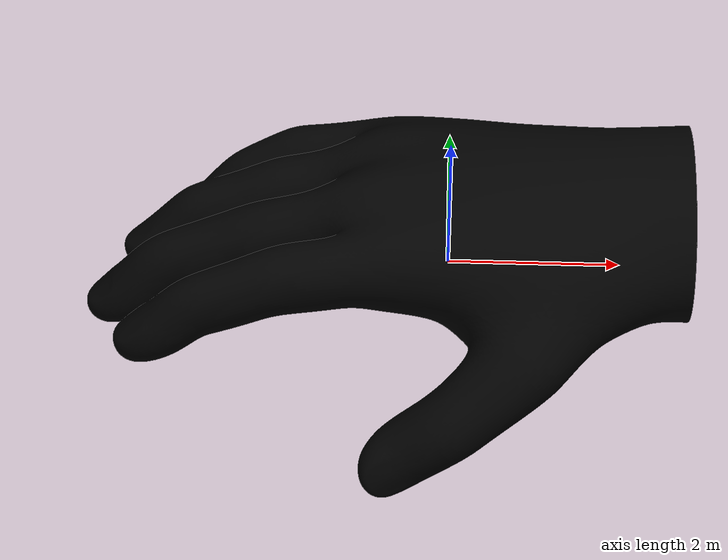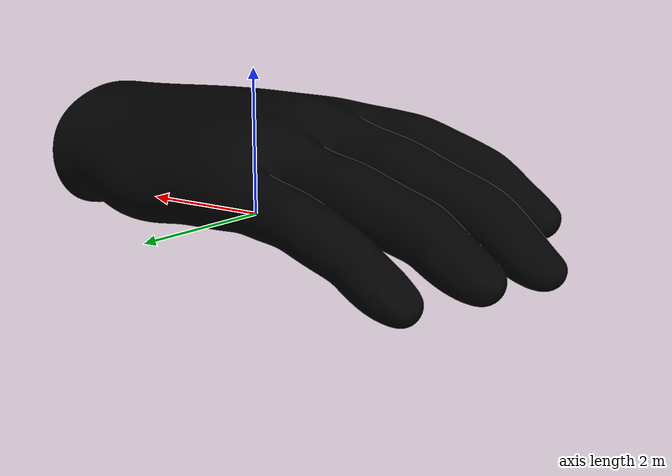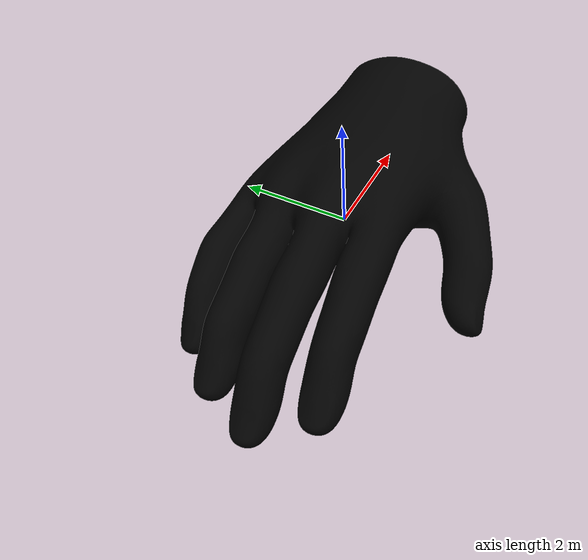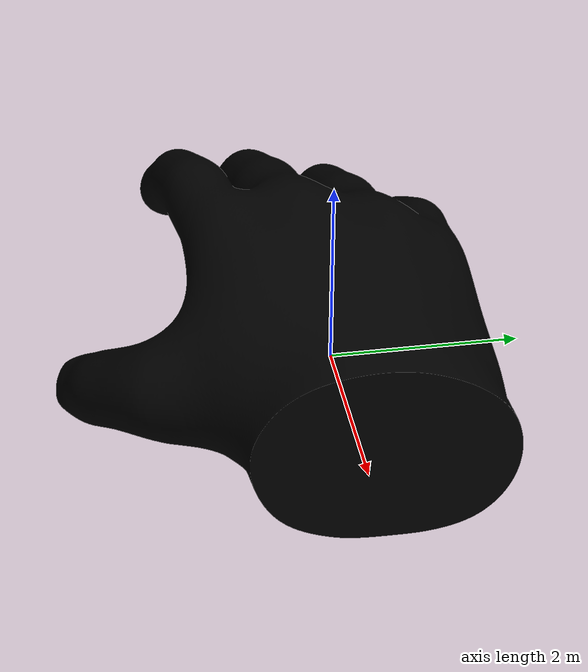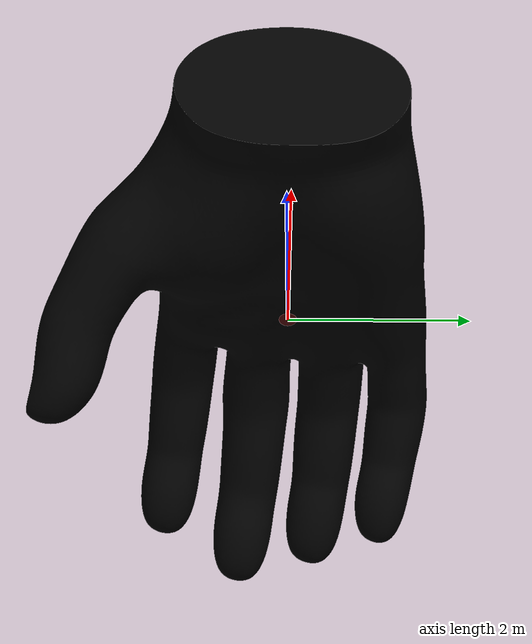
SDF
<sdf version="1.7">
  <model name="hand_2">
    <link name="link">
      <inertial>
        <mass>1</mass>
        <pose>0.4106539958646415 -0.2982243041264396 0.20050890452269782 0.0 -0.0 0.0</pose>
      </inertial>
      <self_collide>0</self_collide>
      <enable_wind>0</enable_wind>
      <kinematic>0</kinematic>
      <pose>0 0 0 0 -0 0</pose>
    </link>
    <link name="hand_2">
      <inertial>
        <pose>0 0 0 0 -0 0</pose>
        <mass>80</mass>
        <inertia>
          <ixx>24.88</ixx>
          <ixy>0</ixy>
          <ixz>0</ixz>
          <iyy>25.73</iyy>
          <iyz>0</iyz>
          <izz>2.48</izz>
        </inertia>
      </inertial>
      <self_collide>0</self_collide>
      <enable_wind>0</enable_wind>
      <kinematic>0</kinematic>
      <pose>0 0 0 0 -0 0</pose>
      <gravity>1</gravity>
      <visual name="visual">
        <pose>0 -0.0 0.02 0 -0 0</pose>
        <geometry>
          <mesh>
            <uri>model://hand_2/meshes/one_hand.dae</uri>
          </mesh>
        </geometry>
        <material>
          <shader type="pixel">
            <normal_map>__default__</normal_map>
          </shader>
          <script>
            <name>ModelPreview_3::hand_2::visual_MATERIAL_</name>
            <uri>__default__</uri>
          </script>
          <ambient>0 0 0 1</ambient>
          <diffuse>0 0 0 1</diffuse>
          <specular>0 0 0 1</specular>
          <emissive>0 0 0 1</emissive>
        </material>
        <transparency>0</transparency>
        <cast_shadows>1</cast_shadows>
      </visual>
      <collision name="collision">
        <laser_retro>0</laser_retro>
        <max_contacts>10</max_contacts>
        <pose>0 -0.0 0.02 0 -0 0</pose>
        <geometry>
          <mesh>
           <uri>model://hand_2/meshes/one_hand.dae</uri>
            <scale>1 1 1</scale>
          </mesh>
        </geometry>
        <surface>
          <friction>
            <ode>
              <mu>1</mu>
              <mu2>1</mu2>
              <fdir1>0 0 0</fdir1>
              <slip1>0</slip1>
              <slip2>0</slip2>
            </ode>
            <torsional>
              <coefficient>1</coefficient>
              <patch_radius>0</patch_radius>
              <surface_radius>0</surface_radius>
              <use_patch_radius>1</use_patch_radius>
              <ode>
                <slip>0</slip>
              </ode>
            </torsional>
          </friction>
          <bounce>
            <restitution_coefficient>0</restitution_coefficient>
            <threshold>1e+06</threshold>
          </bounce>
          <contact>
            <collide_without_contact>0</collide_without_contact>
            <collide_without_contact_bitmask>1</collide_without_contact_bitmask>
            <collide_bitmask>1</collide_bitmask>
            <ode>
              <soft_cfm>0</soft_cfm>
              <soft_erp>0.2</soft_erp>
              <kp>1e+13</kp>
              <kd>1</kd>
              <max_vel>0.01</max_vel>
              <min_depth>0</min_depth>
            </ode>
            <bullet>
              <split_impulse>1</split_impulse>
              <split_impulse_penetration_threshold>-0.01</split_impulse_penetration_threshold>
              <soft_cfm>0</soft_cfm>
              <soft_erp>0.2</soft_erp>
              <kp>1e+13</kp>
              <kd>1</kd>
            </bullet>
          </contact>
        </surface>
      </collision>
    </link>
    <link name="safety_cube">
      <inertial>
        <mass>1</mass>
        <inertia>
          <ixx>0.166667</ixx>
          <ixy>0</ixy>
          <ixz>0</ixz>
          <iyy>0.166667</iyy>
          <iyz>0</iyz>
          <izz>0.166667</izz>
        </inertia>
        <pose>0 0 0 0 -0 0</pose>
      </inertial>
      <gravity>1</gravity>
      <self_collide>0</self_collide>
      <enable_wind>0</enable_wind>
      <kinematic>0</kinematic>
      <pose>0 0 0 0 -0 0</pose>
      <visual name="visual">
        <geometry>
          <cylinder>
            <radius>0.10</radius>
            <length>0.001</length>
          </cylinder>
        </geometry>
        <material>
          <script>
            <name>Gazebo/Red</name>
            <uri>file://media/materials/scripts/gazebo.material</uri>
          </script>
          <shader type="pixel">
            <normal_map>__default__</normal_map>
          </shader>
          <ambient>1 0 0 1</ambient>
          <diffuse>1 0 0 1</diffuse>
          <specular>0.1 0.1 0.1 1</specular>
          <emissive>0 0 0 1</emissive>
        </material>
        <pose>0 0 0 0 -0 0</pose>
        <transparency>0.6</transparency>
        <cast_shadows>1</cast_shadows>
      </visual>
    </link>
    <static>1</static>
    <allow_auto_disable>1</allow_auto_disable>
  </model>
</sdf>
